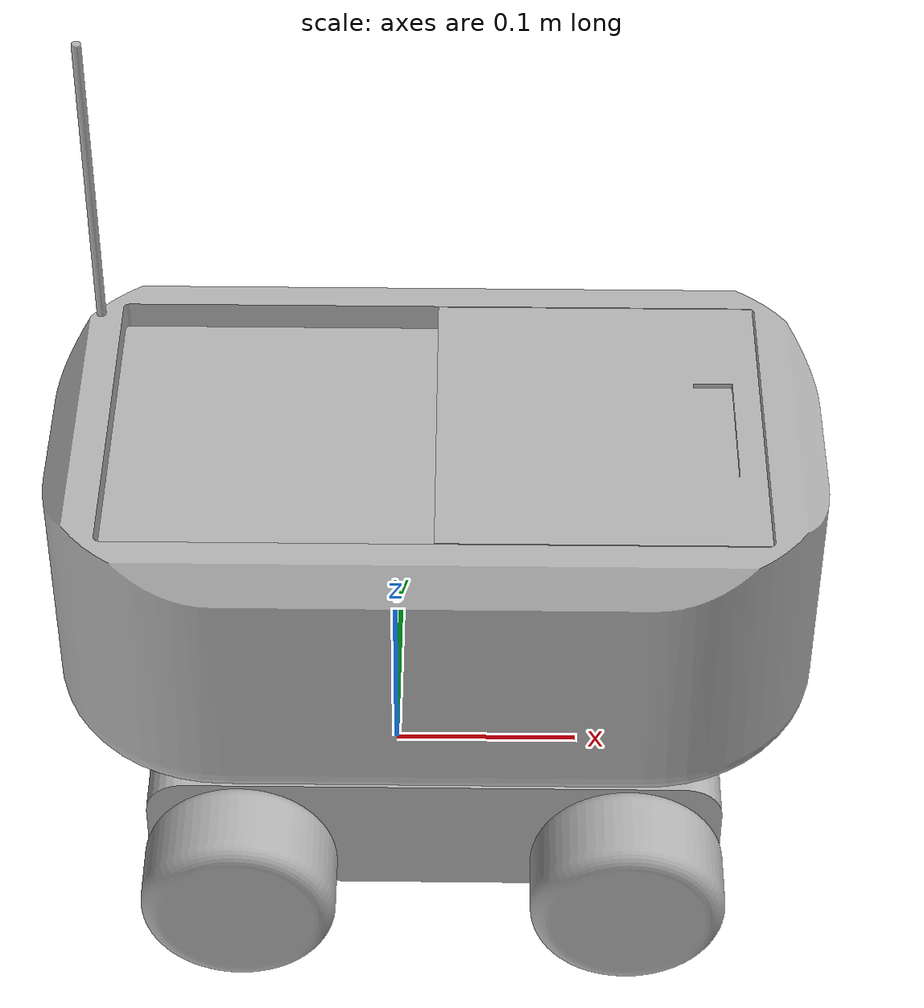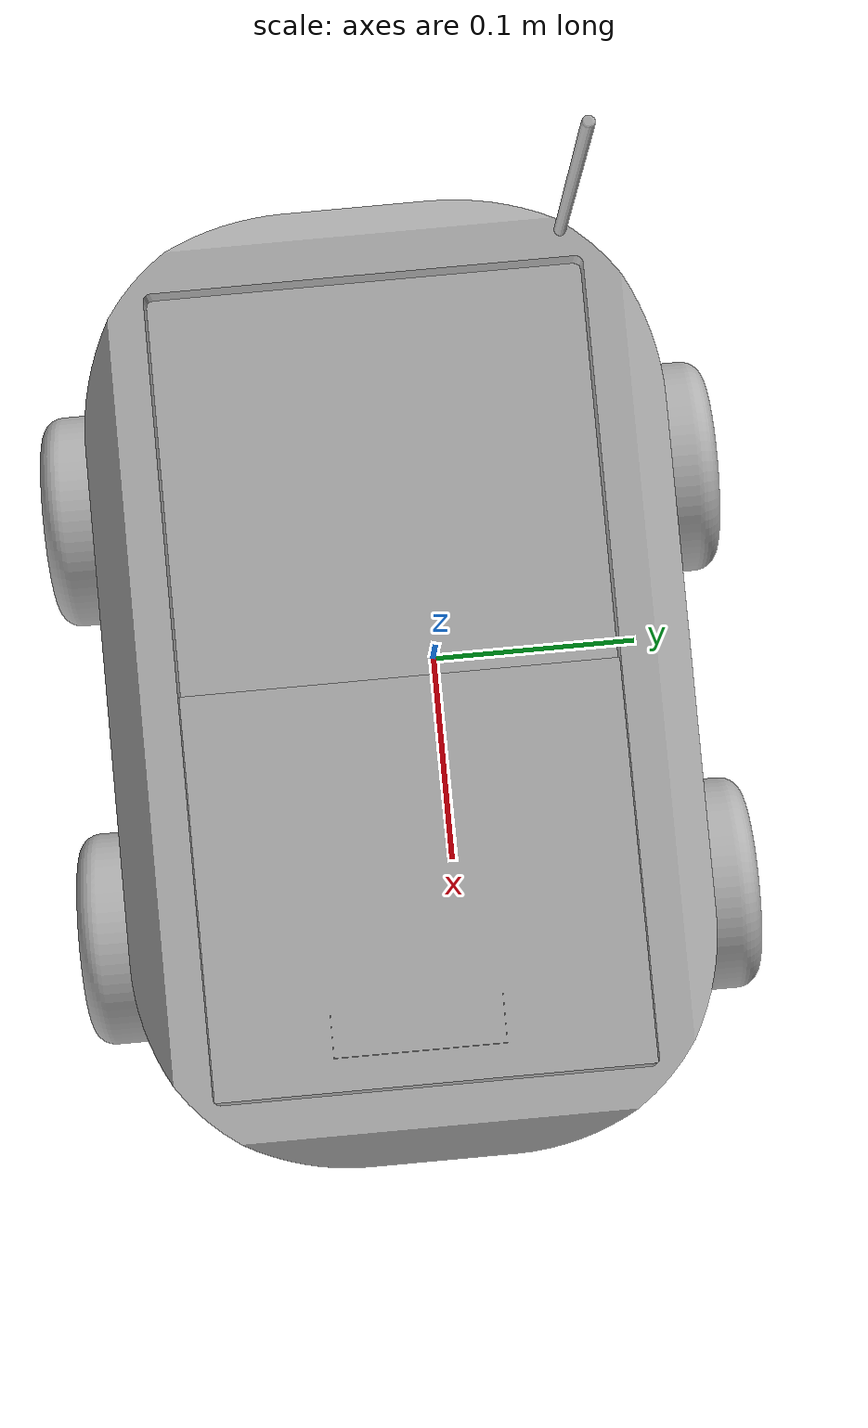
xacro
<?xml version="1.0" ?>
<robot name="ditto" xmlns:xacro="http://www.ros.org/wiki/xacro">

<xacro:include filename="$(find ditto_description)/urdf/materials.xacro" />
<xacro:include filename="$(find ditto_description)/urdf/ditto.trans" />
<xacro:include filename="$(find ditto_description)/urdf/ditto.gazebo" />
<link name="base_link">
  <inertial>
    <origin xyz="0.02224981133923585 -0.019196508874661813 0.0553533218743097" rpy="0 0 0"/>
    <mass value="37.14092018645439"/>
    <inertia ixx="0.138389" iyy="0.281836" izz="0.379278" ixy="0.0" iyz="0.0" ixz="0.0"/>
  </inertial>
  <visual>
    <origin xyz="0 0 0" rpy="0 0 0"/>
    <geometry>
      <mesh filename="package://ditto_description/meshes/base_link.stl" scale="0.001 0.001 0.001"/>
    </geometry>
    <material name="silver"/>
  </visual>
  <collision>
    <origin xyz="0 0 0" rpy="0 0 0"/>
    <geometry>
      <mesh filename="package://ditto_description/meshes/base_link.stl" scale="0.001 0.001 0.001"/>
    </geometry>
  </collision>
</link>

<link name="rw2__1">
  <inertial>
    <origin xyz="-1.886607639972615e-07 -0.02499950887466182 0.0" rpy="0 0 0"/>
    <mass value="0.3532303882212242"/>
    <inertia ixx="0.000284" iyy="0.000429" izz="0.000284" ixy="-0.0" iyz="0.0" ixz="0.0"/>
  </inertial>
  <visual>
    <origin xyz="0.07775 0.126697 -0.0525" rpy="0 0 0"/>
    <geometry>
      <mesh filename="package://ditto_description/meshes/rw2__1.stl" scale="0.001 0.001 0.001"/>
    </geometry>
    <material name="silver"/>
  </visual>
  <collision>
    <origin xyz="0.07775 0.126697 -0.0525" rpy="0 0 0"/>
    <geometry>
      <mesh filename="package://ditto_description/meshes/rw2__1.stl" scale="0.001 0.001 0.001"/>
    </geometry>
  </collision>
</link>

<link name="rw1__1">
  <inertial>
    <origin xyz="-1.886607640111393e-07 -0.02499950887466254 1.1102230246251565e-16" rpy="0 0 0"/>
    <mass value="0.3532303882212241"/>
    <inertia ixx="0.000284" iyy="0.000429" izz="0.000284" ixy="0.0" iyz="0.0" ixz="-0.0"/>
  </inertial>
  <visual>
    <origin xyz="-0.12225 0.126697 -0.0525" rpy="0 0 0"/>
    <geometry>
      <mesh filename="package://ditto_description/meshes/rw1__1.stl" scale="0.001 0.001 0.001"/>
    </geometry>
    <material name="silver"/>
  </visual>
  <collision>
    <origin xyz="-0.12225 0.126697 -0.0525" rpy="0 0 0"/>
    <geometry>
      <mesh filename="package://ditto_description/meshes/rw1__1.stl" scale="0.001 0.001 0.001"/>
    </geometry>
  </collision>
</link>

<link name="lw2_1">
  <inertial>
    <origin xyz="-1.886607642193061e-07 0.025000491125338448 -1.3877787807814457e-17" rpy="0 0 0"/>
    <mass value="0.35323038822122366"/>
    <inertia ixx="0.000284" iyy="0.000429" izz="0.000284" ixy="0.0" iyz="-0.0" ixz="0.0"/>
  </inertial>
  <visual>
    <origin xyz="0.07775 -0.088303 -0.0525" rpy="0 0 0"/>
    <geometry>
      <mesh filename="package://ditto_description/meshes/lw2_1.stl" scale="0.001 0.001 0.001"/>
    </geometry>
    <material name="silver"/>
  </visual>
  <collision>
    <origin xyz="0.07775 -0.088303 -0.0525" rpy="0 0 0"/>
    <geometry>
      <mesh filename="package://ditto_description/meshes/lw2_1.stl" scale="0.001 0.001 0.001"/>
    </geometry>
  </collision>
</link>

<link name="lw1_1">
  <inertial>
    <origin xyz="-1.88660763900117e-07 0.02500049112533831 -3.469446951953614e-17" rpy="0 0 0"/>
    <mass value="0.35323038822122393"/>
    <inertia ixx="0.000284" iyy="0.000429" izz="0.000284" ixy="-0.0" iyz="0.0" ixz="0.0"/>
  </inertial>
  <visual>
    <origin xyz="-0.12225 -0.088303 -0.0525" rpy="0 0 0"/>
    <geometry>
      <mesh filename="package://ditto_description/meshes/lw1_1.stl" scale="0.001 0.001 0.001"/>
    </geometry>
    <material name="silver"/>
  </visual>
  <collision>
    <origin xyz="-0.12225 -0.088303 -0.0525" rpy="0 0 0"/>
    <geometry>
      <mesh filename="package://ditto_description/meshes/lw1_1.stl" scale="0.001 0.001 0.001"/>
    </geometry>
  </collision>
</link>

<link name="camera_1">
  <inertial>
    <origin xyz="0.014827096065687634 -1.8596689690363044e-06 -3.858900152439726e-05" rpy="0 0 0"/>
    <mass value="0.024153880267308962"/>
    <inertia ixx="4e-06" iyy="3e-06" izz="5e-06" ixy="0.0" iyz="-0.0" ixz="-0.0"/>
  </inertial>
  <visual>
    <origin xyz="-0.188613 0.018837 -0.197534" rpy="0 0 0"/>
    <geometry>
      <mesh filename="package://ditto_description/meshes/camera_1.stl" scale="0.001 0.001 0.001"/>
    </geometry>
    <material name="silver"/>
  </visual>
  <collision>
    <origin xyz="-0.188613 0.018837 -0.197534" rpy="0 0 0"/>
    <geometry>
      <mesh filename="package://ditto_description/meshes/camera_1.stl" scale="0.001 0.001 0.001"/>
    </geometry>
  </collision>
</link>

<link name="antenna_1">
  <inertial>
    <origin xyz="-0.26981636648725377 0.06090723708749407 0.06992197091004265" rpy="0 0 0"/>
    <mass value="0.026178748514489966"/>
    <inertia ixx="6.3e-05" iyy="6.3e-05" izz="0.0" ixy="0.0" iyz="-0.0" ixz="0.0"/>
  </inertial>
  <visual>
    <origin xyz="-0.116004 -0.001736 -0.27" rpy="0 0 0"/>
    <geometry>
      <mesh filename="package://ditto_description/meshes/antenna_1.stl" scale="0.001 0.001 0.001"/>
    </geometry>
    <material name="silver"/>
  </visual>
  <collision>
    <origin xyz="-0.116004 -0.001736 -0.27" rpy="0 0 0"/>
    <geometry>
      <mesh filename="package://ditto_description/meshes/antenna_1.stl" scale="0.001 0.001 0.001"/>
    </geometry>
  </collision>
</link>

<link name="Storage_1">
  <inertial>
    <origin xyz="-0.0018381482135118275 -3.15672178443846e-06 0.057467056926413365" rpy="0 0 0"/>
    <mass value="42.99598733176282"/>
    <inertia ixx="0.369869" iyy="0.697383" izz="0.889436" ixy="2.9e-05" iyz="6e-06" ixz="0.002771"/>
  </inertial>
  <visual>
    <origin xyz="-0.02225 0.019197 -0.105" rpy="0 0 0"/>
    <geometry>
      <mesh filename="package://ditto_description/meshes/Storage_1.stl" scale="0.001 0.001 0.001"/>
    </geometry>
    <material name="silver"/>
  </visual>
  <collision>
    <origin xyz="-0.02225 0.019197 -0.105" rpy="0 0 0"/>
    <geometry>
      <mesh filename="package://ditto_description/meshes/Storage_1.stl" scale="0.001 0.001 0.001"/>
    </geometry>
  </collision>
</link>

<link name="axel4_1">
  <inertial>
    <origin xyz="-0.11324418866076419 0.0410144911253382 -0.014999999999999972" rpy="0 0 0"/>
    <mass value="0.057800396087530966"/>
    <inertia ixx="3e-06" iyy="5e-06" izz="3e-06" ixy="-0.0" iyz="0.0" ixz="-0.0"/>
  </inertial>
  <visual>
    <origin xyz="-0.035494 0.167711 -0.0675" rpy="0 0 0"/>
    <geometry>
      <mesh filename="package://ditto_description/meshes/axel4_1.stl" scale="0.001 0.001 0.001"/>
    </geometry>
    <material name="silver"/>
  </visual>
  <collision>
    <origin xyz="-0.035494 0.167711 -0.0675" rpy="0 0 0"/>
    <geometry>
      <mesh filename="package://ditto_description/meshes/axel4_1.stl" scale="0.001 0.001 0.001"/>
    </geometry>
  </collision>
</link>

<link name="axel1_1">
  <inertial>
    <origin xyz="-0.27305218866076364 0.23280949112533816 -0.015000000000000041" rpy="0 0 0"/>
    <mass value="0.05780039608753098"/>
    <inertia ixx="3e-06" iyy="5e-06" izz="3e-06" ixy="0.0" iyz="-0.0" ixz="0.0"/>
  </inertial>
  <visual>
    <origin xyz="-0.395302 0.144506 -0.0675" rpy="0 0 0"/>
    <geometry>
      <mesh filename="package://ditto_description/meshes/axel1_1.stl" scale="0.001 0.001 0.001"/>
    </geometry>
    <material name="silver"/>
  </visual>
  <collision>
    <origin xyz="-0.395302 0.144506 -0.0675" rpy="0 0 0"/>
    <geometry>
      <mesh filename="package://ditto_description/meshes/axel1_1.stl" scale="0.001 0.001 0.001"/>
    </geometry>
  </collision>
</link>

<link name="axel3_1">
  <inertial>
    <origin xyz="-0.17305218866076416 0.19101449112533778 -0.014999999999999916" rpy="0 0 0"/>
    <mass value="0.05780039608753098"/>
    <inertia ixx="3e-06" iyy="5e-06" izz="3e-06" ixy="0.0" iyz="0.0" ixz="-0.0"/>
  </inertial>
  <visual>
    <origin xyz="-0.295302 0.317711 -0.0675" rpy="0 0 0"/>
    <geometry>
      <mesh filename="package://ditto_description/meshes/axel3_1.stl" scale="0.001 0.001 0.001"/>
    </geometry>
    <material name="silver"/>
  </visual>
  <collision>
    <origin xyz="-0.295302 0.317711 -0.0675" rpy="0 0 0"/>
    <geometry>
      <mesh filename="package://ditto_description/meshes/axel3_1.stl" scale="0.001 0.001 0.001"/>
    </geometry>
  </collision>
</link>

<link name="axel2_1">
  <inertial>
    <origin xyz="-0.21324418866076394 0.08280949112533822 -0.015000000000000013" rpy="0 0 0"/>
    <mass value="0.057800396087530986"/>
    <inertia ixx="3e-06" iyy="5e-06" izz="3e-06" ixy="0.0" iyz="-0.0" ixz="0.0"/>
  </inertial>
  <visual>
    <origin xyz="-0.135494 -0.005494 -0.0675" rpy="0 0 0"/>
    <geometry>
      <mesh filename="package://ditto_description/meshes/axel2_1.stl" scale="0.001 0.001 0.001"/>
    </geometry>
    <material name="silver"/>
  </visual>
  <collision>
    <origin xyz="-0.135494 -0.005494 -0.0675" rpy="0 0 0"/>
    <geometry>
      <mesh filename="package://ditto_description/meshes/axel2_1.stl" scale="0.001 0.001 0.001"/>
    </geometry>
  </collision>
</link>

<link name="fixed_box_1">
  <inertial>
    <origin xyz="-0.12525418866076432 0.05441249112533836 -0.03500000000000003" rpy="0 0 0"/>
    <mass value="2.5434000000000014"/>
    <inertia ixx="0.006888" iyy="0.006888" izz="0.013734" ixy="0.0" iyz="0.0" ixz="0.0"/>
  </inertial>
  <visual>
    <origin xyz="-0.072504 0.073609 -0.27" rpy="0 0 0"/>
    <geometry>
      <mesh filename="package://ditto_description/meshes/fixed_box_1.stl" scale="0.001 0.001 0.001"/>
    </geometry>
    <material name="silver"/>
  </visual>
  <collision>
    <origin xyz="-0.072504 0.073609 -0.27" rpy="0 0 0"/>
    <geometry>
      <mesh filename="package://ditto_description/meshes/fixed_box_1.stl" scale="0.001 0.001 0.001"/>
    </geometry>
  </collision>
</link>

<link name="openingbox_1">
  <inertial>
    <origin xyz="0.036126590511512235 0.05446170574966151 -0.007557861208932315" rpy="0 0 0"/>
    <mass value="3.418870840246652"/>
    <inertia ixx="0.009252" iyy="0.007675" izz="0.0168" ixy="-1e-05" iyz="-1e-06" ixz="1.2e-05"/>
  </inertial>
  <visual>
    <origin xyz="-0.067504 0.073609 -0.255" rpy="0 0 0"/>
    <geometry>
      <mesh filename="package://ditto_description/meshes/openingbox_1.stl" scale="0.001 0.001 0.001"/>
    </geometry>
    <material name="silver"/>
  </visual>
  <collision>
    <origin xyz="-0.067504 0.073609 -0.255" rpy="0 0 0"/>
    <geometry>
      <mesh filename="package://ditto_description/meshes/openingbox_1.stl" scale="0.001 0.001 0.001"/>
    </geometry>
  </collision>
</link>

<joint name="RW2" type="continuous">
  <origin xyz="-0.113244 0.041014 -0.015" rpy="0 0 0"/>
  <parent link="axel4_1"/>
  <child link="rw2__1"/>
  <axis xyz="0.0 1.0 -0.0"/>
</joint>

<joint name="RW1" type="continuous">
  <origin xyz="-0.173052 0.191014 -0.015" rpy="0 0 0"/>
  <parent link="axel3_1"/>
  <child link="rw1__1"/>
  <axis xyz="0.0 1.0 -0.0"/>
</joint>

<joint name="LW2" type="continuous">
  <origin xyz="-0.213244 0.082809 -0.015" rpy="0 0 0"/>
  <parent link="axel2_1"/>
  <child link="lw2_1"/>
  <axis xyz="0.0 1.0 -0.0"/>
</joint>

<joint name="LW1" type="continuous">
  <origin xyz="-0.273052 0.232809 -0.015" rpy="0 0 0"/>
  <parent link="axel1_1"/>
  <child link="lw1_1"/>
  <axis xyz="0.0 1.0 -0.0"/>
</joint>

<joint name="Camera_link" type="fixed">
  <origin xyz="0.166363 0.00036 0.092534" rpy="0 0 0"/>
  <parent link="Storage_1"/>
  <child link="camera_1"/>
</joint>

<joint name="antenna" type="fixed">
  <origin xyz="0.093754 0.020933 0.165" rpy="0 0 0"/>
  <parent link="Storage_1"/>
  <child link="antenna_1"/>
</joint>

<joint name="storage_link" type="fixed">
  <origin xyz="0.02225 -0.019197 0.105" rpy="0 0 0"/>
  <parent link="base_link"/>
  <child link="Storage_1"/>
</joint>

<joint name="shaft1" type="fixed">
  <origin xyz="0.035494 -0.167711 0.0675" rpy="0 0 0"/>
  <parent link="base_link"/>
  <child link="axel4_1"/>
</joint>

<joint name="shaft4" type="fixed">
  <origin xyz="0.395302 -0.144506 0.0675" rpy="0 0 0"/>
  <parent link="base_link"/>
  <child link="axel1_1"/>
</joint>

<joint name="shaft2" type="fixed">
  <origin xyz="0.295302 -0.317711 0.0675" rpy="0 0 0"/>
  <parent link="base_link"/>
  <child link="axel3_1"/>
</joint>

<joint name="shaft3" type="fixed">
  <origin xyz="0.135494 0.005494 0.0675" rpy="0 0 0"/>
  <parent link="base_link"/>
  <child link="axel2_1"/>
</joint>

<joint name="fixed lid" type="fixed">
  <origin xyz="0.050254 -0.054412 0.165" rpy="0 0 0"/>
  <parent link="Storage_1"/>
  <child link="fixed_box_1"/>
</joint>

<joint name="closing_lid" type="prismatic">
  <origin xyz="-0.005 0.0 -0.015" rpy="0 0 0"/>
  <parent link="fixed_box_1"/>
  <child link="openingbox_1"/>
  <axis xyz="-1.0 0.0 -0.0"/>
  <limit upper="0.16" lower="-0.0" effort="100" velocity="50"/>
</joint>

</robot>

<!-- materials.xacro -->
<robot name="ditto" xmlns:xacro="http://www.ros.org/wiki/xacro" >

<material name="silver">
  <color rgba="0.700 0.700 0.700 1.000"/>
</material>

</robot>

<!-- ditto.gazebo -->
<robot name="ditto" xmlns:xacro="http://www.ros.org/wiki/xacro" >

<xacro:property name="body_color" value="Gazebo/White" />
<xacro:property name="wheel" value="Gazebo/Black" />
<xacro:property name="base" value="Gazebo/Blue" />
<xacro:property name="camera" value="Gazebo/Yellow" />
<gazebo>
  <plugin name="control" filename="libgazebo_ros_control.so"/>
</gazebo>
<gazebo reference="base_link">
  <material>${base}</material>
  <mu1>0.2</mu1>
  <mu2>0.2</mu2>
  <selfCollide>true</selfCollide>
  <gravity>true</gravity>
</gazebo>

<gazebo reference="rw2__1">
  <material>${wheel}</material>
  <mu1>0.2</mu1>
  <mu2>0.2</mu2>
  <selfCollide>true</selfCollide>
</gazebo>

<gazebo reference="rw1__1">
  <material>${wheel}</material>
  <mu1>0.2</mu1>
  <mu2>0.2</mu2>
  <selfCollide>true</selfCollide>
</gazebo>

<gazebo reference="lw2_1">
  <material>${wheel}</material>
  <mu1>0.2</mu1>
  <mu2>0.2</mu2>
  <selfCollide>true</selfCollide>
</gazebo>

<gazebo reference="lw1_1">
  <material>${wheel}</material>
  <mu1>0.2</mu1>
  <mu2>0.2</mu2>
  <selfCollide>true</selfCollide>
</gazebo>

<gazebo reference="camera_1">
  <material>${camera}</material>
  <mu1>0.2</mu1>
  <mu2>0.2</mu2>
  <selfCollide>true</selfCollide>
</gazebo>

<gazebo reference="antenna_1">
  <material>${wheel}</material>
  <mu1>0.2</mu1>
  <mu2>0.2</mu2>
  <selfCollide>true</selfCollide>
</gazebo>

<gazebo reference="Storage_1">
  <material>${body_color}</material>
  <mu1>0.2</mu1>
  <mu2>0.2</mu2>
  <selfCollide>true</selfCollide>
</gazebo>

<gazebo reference="axel4_1">
  <material>${body_color}</material>
  <mu1>0.2</mu1>
  <mu2>0.2</mu2>
  <selfCollide>true</selfCollide>
</gazebo>

<gazebo reference="axel1_1">
  <material>${body_color}</material>
  <mu1>0.2</mu1>
  <mu2>0.2</mu2>
  <selfCollide>true</selfCollide>
</gazebo>

<gazebo reference="axel3_1">
  <material>${body_color}</material>
  <mu1>0.2</mu1>
  <mu2>0.2</mu2>
  <selfCollide>true</selfCollide>
</gazebo>

<gazebo reference="axel2_1">
  <material>${body_color}</material>
  <mu1>0.2</mu1>
  <mu2>0.2</mu2>
  <selfCollide>true</selfCollide>
</gazebo>

<gazebo reference="fixed_box_1">
  <material>${wheel}</material>
  <mu1>0.2</mu1>
  <mu2>0.2</mu2>
  <selfCollide>true</selfCollide>
</gazebo>

<gazebo reference="openingbox_1">
  <material>${wheel}</material>
  <mu1>0.2</mu1>
  <mu2>0.2</mu2>
  <selfCollide>true</selfCollide>
</gazebo>

<gazebo>
  <plugin name="skid_steer_drive_controller" filename="libgazebo_ros_skid_steer_drive.so">
    <updateRate>100.0</updateRate>
    <robotNamespace>/</robotNamespace>
    <leftFrontJoint>LW1</leftFrontJoint>
    <rightFrontJoint>RW1</rightFrontJoint>
    <leftRearJoint>LW2</leftRearJoint>
    <rightRearJoint>RW2</rightRearJoint>
    <wheelSeparation>0.300</wheelSeparation>
    <wheelDiameter>0.100</wheelDiameter>
    <wheelAcceleration>0.3</wheelAcceleration>
    <robotBaseFrame>base_link</robotBaseFrame>
    <torque>10</torque>
    <commandTopic>cmd_vel</commandTopic>
    <broadcastTF>true</broadcastTF>
    <odometryTopic>odom</odometryTopic>
    <odometryFrame>odom</odometryFrame>
    <publishOdom>true</publishOdom>
    <covariance_x>0.001</covariance_x>
    <covariance_y>0.001</covariance_y>
    <covariance_yaw>0.001</covariance_yaw>
  </plugin>
</gazebo>

  <gazebo reference="imu_link">
    <gravity>true</gravity>
    <sensor name="imu_sensor" type="imu">
      <always_on>true</always_on>
      <update_rate>100</update_rate>
      <visualize>true</visualize>

      <plugin filename="libgazebo_ros_imu_sensor.so" name="imu_plugin">
        <topicName>imu</topicName>
        <bodyName>imu_link</bodyName>
        <updateRateHZ>10.0</updateRateHZ>
        <gaussianNoise>0.0</gaussianNoise>
        <xyzOffset>0 0 0</xyzOffset>
        <rpyOffset>0 0 0</rpyOffset>
        <frameName>base_link</frameName>
      </plugin>
      <pose>0 0 0 0 0 0</pose>
    </sensor>
  </gazebo>

  <gazebo>
    <plugin name="gps_controller" filename="libhector_gazebo_ros_gps.so">
      <updateRate>40</updateRate>
      <robotNamespace>/</robotNamespace>
      <bodyName>base_link</bodyName>
      <frameId>gps</frameId>
      <topicName>/navsat/fix</topicName>
      <velocityTopicName>/navsat/vel</velocityTopicName>
      <referenceLatitude>49.9</referenceLatitude>
      <referenceLongitude>8.9</referenceLongitude>
      <referenceHeading>0</referenceHeading>
      <referenceAltitude>0</referenceAltitude>
      <drift>0.0001 0.0001 0.0001</drift>
    </plugin>
  </gazebo>

  <gazebo reference="camera_1">
    <sensor type="depth" name="intelrealsense2">
      <always_on>1</always_on>
      <visualize>true</visualize>
      <camera>
        <horizontal_fov>1.047</horizontal_fov>
        <image>
          <width>640</width>
          <height>480</height>
          <format>R8G8B8</format>
        </image>
        <depth_camera>

        </depth_camera>
        <clip>
          <near>0.1</near>
          <far>100</far>
        </clip>
      </camera>

      <plugin name="intelrealsense" filename="libgazebo_ros_openni_kinect.so">
        <alwaysOn>true</alwaysOn>
        <updateRate>10.0</updateRate>
        <cameraName>camera</cameraName>
        <frameName>camera_1</frameName>
        <imageTopicName>/camera/color/image_raw</imageTopicName>
        <depthImageTopicName>/camera/depth/image_raw</depthImageTopicName>
        <pointCloudTopicName>depth/points</pointCloudTopicName>
        <cameraInfoTopicName>/camera/color/camera_info</cameraInfoTopicName>
        <depthImageCameraInfoTopicName>/camera/depth/camera_info</depthImageCameraInfoTopicName>
         <pointCloudCutoff>0.2</pointCloudCutoff>
         <pointCloudCutoffMax>10.0</pointCloudCutoffMax>
        <hackBaseline>0.07</hackBaseline>
        <distortionK1>0.0</distortionK1>
        <distortionK2>0.0</distortionK2>
        <distortionK3>0.0</distortionK3>
        <distortionT1>0.0</distortionT1>
        <distortionT2>0.0</distortionT2>
        <CxPrime>0.0</CxPrime>
        <Cx>0.0</Cx>
        <Cy>0.0</Cy>
        <focalLength>0.0</focalLength>
      </plugin>
    </sensor>
  </gazebo>

</robot>
